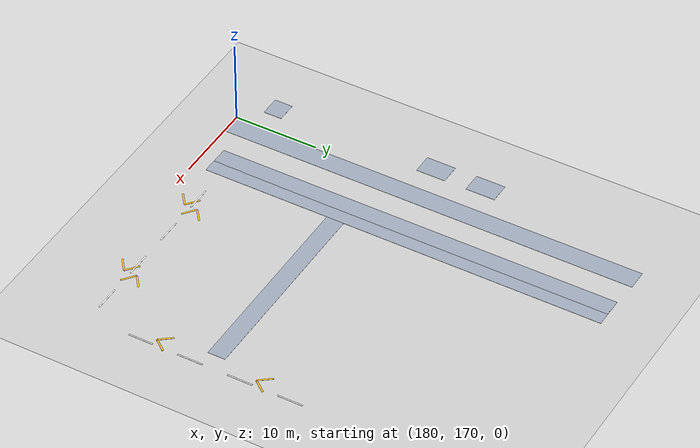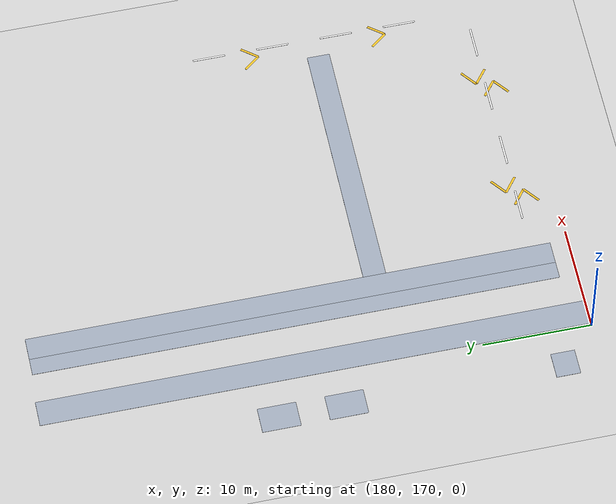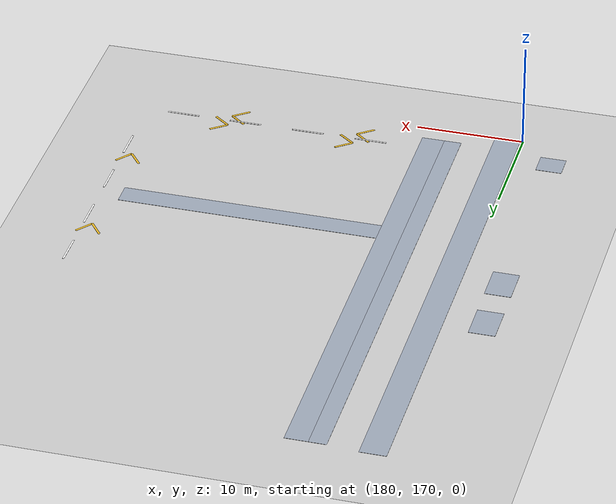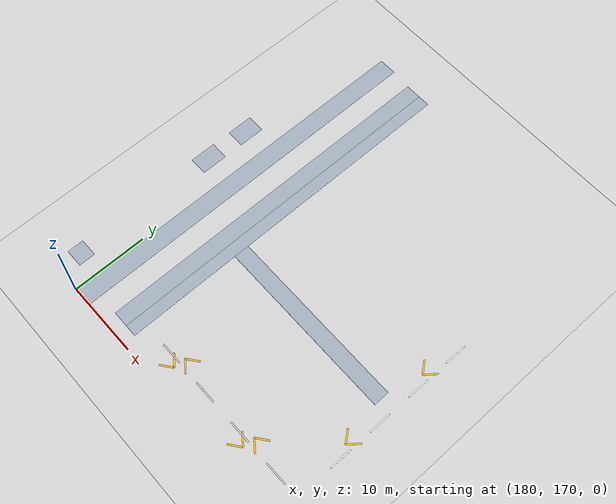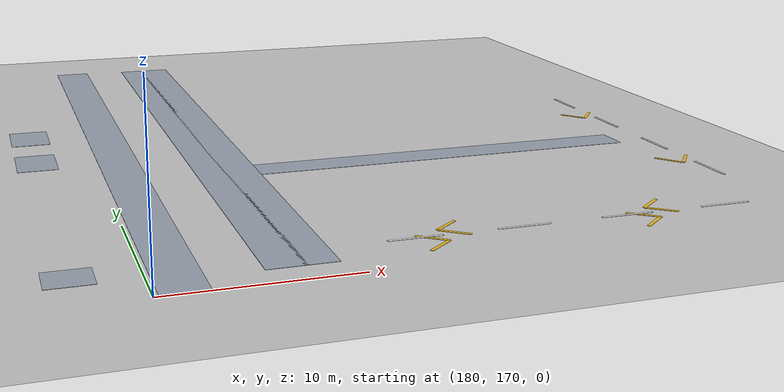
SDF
<sdf version="1.6">
 <world name="cad_plant">
  <include><uri>model://sun</uri></include>
  <include><uri>model://ground_plane</uri></include>
  <model name="lane_17">
   <static>true</static>
   <pose>201.200 187.910 0.020 0 0 0.0000</pose>
   <link name="link">
    <visual name="v">
     <geometry><box><size>24.100 2.100 0.020</size></box></geometry>
     <material><ambient>0.62 0.66 0.72 1</ambient><diffuse>0.62 0.66 0.72 1</diffuse></material>
    </visual>
   </link>
  </model>
  <model name="lane_27">
   <static>true</static>
   <pose>181.430 195.045 0.020 0 0 0.0000</pose>
   <link name="link">
    <visual name="v">
     <geometry><box><size>2.400 50.190 0.020</size></box></geometry>
     <material><ambient>0.62 0.66 0.72 1</ambient><diffuse>0.62 0.66 0.72 1</diffuse></material>
    </visual>
   </link>
  </model>
  <model name="lane_29">
   <static>true</static>
   <pose>186.500 195.765 0.020 0 0 0.0000</pose>
   <link name="link">
    <visual name="v">
     <geometry><box><size>2.100 48.210 0.020</size></box></geometry>
     <material><ambient>0.62 0.66 0.72 1</ambient><diffuse>0.62 0.66 0.72 1</diffuse></material>
    </visual>
   </link>
  </model>
  <model name="lane_31">
   <static>true</static>
   <pose>188.100 195.765 0.020 0 0 0.0000</pose>
   <link name="link">
    <visual name="v">
     <geometry><box><size>2.100 48.210 0.020</size></box></geometry>
     <material><ambient>0.62 0.66 0.72 1</ambient><diffuse>0.62 0.66 0.72 1</diffuse></material>
    </visual>
   </link>
  </model>
  <model name="road2_div01">
   <static>true</static>
   <pose>215.100 179.850 0.080 0 0 0.0000</pose>
   <link name="link">
    <visual name="v">
     <geometry><box><size>0.160 3.000 0.020</size></box></geometry>
     <material><ambient>0.97 0.97 0.97 1</ambient><diffuse>0.97 0.97 0.97 1</diffuse></material>
    </visual>
   </link>
  </model>
  <model name="road2_div02">
   <static>true</static>
   <pose>215.100 185.850 0.080 0 0 0.0000</pose>
   <link name="link">
    <visual name="v">
     <geometry><box><size>0.160 3.000 0.020</size></box></geometry>
     <material><ambient>0.97 0.97 0.97 1</ambient><diffuse>0.97 0.97 0.97 1</diffuse></material>
    </visual>
   </link>
  </model>
  <model name="road2_div03">
   <static>true</static>
   <pose>215.100 191.850 0.080 0 0 0.0000</pose>
   <link name="link">
    <visual name="v">
     <geometry><box><size>0.160 3.000 0.020</size></box></geometry>
     <material><ambient>0.97 0.97 0.97 1</ambient><diffuse>0.97 0.97 0.97 1</diffuse></material>
    </visual>
   </link>
  </model>
  <model name="road2_div04">
   <static>true</static>
   <pose>215.100 197.850 0.080 0 0 0.0000</pose>
   <link name="link">
    <visual name="v">
     <geometry><box><size>0.160 3.000 0.020</size></box></geometry>
     <material><ambient>0.97 0.97 0.97 1</ambient><diffuse>0.97 0.97 0.97 1</diffuse></material>
    </visual>
   </link>
  </model>
  <model name="road2a_arw01l">
   <static>true</static>
   <pose>213.746 182.059 0.070 0 0 8.5172</pose>
   <link name="link">
    <visual name="v">
     <geometry><box><size>1.800 0.200 0.020</size></box></geometry>
     <material><ambient>0.95 0.75 0.15 1</ambient><diffuse>0.95 0.75 0.15 1</diffuse></material>
    </visual>
   </link>
  </model>
  <model name="road2a_arw01r">
   <static>true</static>
   <pose>214.854 182.059 0.070 0 0 7.1908</pose>
   <link name="link">
    <visual name="v">
     <geometry><box><size>1.800 0.200 0.020</size></box></geometry>
     <material><ambient>0.95 0.75 0.15 1</ambient><diffuse>0.95 0.75 0.15 1</diffuse></material>
    </visual>
   </link>
  </model>
  <model name="road2a_arw02l">
   <static>true</static>
   <pose>213.746 194.059 0.070 0 0 8.5172</pose>
   <link name="link">
    <visual name="v">
     <geometry><box><size>1.800 0.200 0.020</size></box></geometry>
     <material><ambient>0.95 0.75 0.15 1</ambient><diffuse>0.95 0.75 0.15 1</diffuse></material>
    </visual>
   </link>
  </model>
  <model name="road2a_arw02r">
   <static>true</static>
   <pose>214.854 194.059 0.070 0 0 7.1908</pose>
   <link name="link">
    <visual name="v">
     <geometry><box><size>1.800 0.200 0.020</size></box></geometry>
     <material><ambient>0.95 0.75 0.15 1</ambient><diffuse>0.95 0.75 0.15 1</diffuse></material>
    </visual>
   </link>
  </model>
  <model name="road3_div01">
   <static>true</static>
   <pose>193.650 173.500 0.080 0 0 0.0000</pose>
   <link name="link">
    <visual name="v">
     <geometry><box><size>3.000 0.160 0.020</size></box></geometry>
     <material><ambient>0.97 0.97 0.97 1</ambient><diffuse>0.97 0.97 0.97 1</diffuse></material>
    </visual>
   </link>
  </model>
  <model name="road3_div02">
   <static>true</static>
   <pose>199.650 173.500 0.080 0 0 0.0000</pose>
   <link name="link">
    <visual name="v">
     <geometry><box><size>3.000 0.160 0.020</size></box></geometry>
     <material><ambient>0.97 0.97 0.97 1</ambient><diffuse>0.97 0.97 0.97 1</diffuse></material>
    </visual>
   </link>
  </model>
  <model name="road3_div03">
   <static>true</static>
   <pose>205.650 173.500 0.080 0 0 0.0000</pose>
   <link name="link">
    <visual name="v">
     <geometry><box><size>3.000 0.160 0.020</size></box></geometry>
     <material><ambient>0.97 0.97 0.97 1</ambient><diffuse>0.97 0.97 0.97 1</diffuse></material>
    </visual>
   </link>
  </model>
  <model name="road3_div04">
   <static>true</static>
   <pose>211.650 173.500 0.080 0 0 0.0000</pose>
   <link name="link">
    <visual name="v">
     <geometry><box><size>3.000 0.160 0.020</size></box></geometry>
     <material><ambient>0.97 0.97 0.97 1</ambient><diffuse>0.97 0.97 0.97 1</diffuse></material>
    </visual>
   </link>
  </model>
  <model name="road3a_arw01l">
   <static>true</static>
   <pose>194.441 172.146 0.070 0 0 3.8048</pose>
   <link name="link">
    <visual name="v">
     <geometry><box><size>1.800 0.200 0.020</size></box></geometry>
     <material><ambient>0.95 0.75 0.15 1</ambient><diffuse>0.95 0.75 0.15 1</diffuse></material>
    </visual>
   </link>
  </model>
  <model name="road3a_arw01r">
   <static>true</static>
   <pose>194.441 173.254 0.070 0 0 2.4784</pose>
   <link name="link">
    <visual name="v">
     <geometry><box><size>1.800 0.200 0.020</size></box></geometry>
     <material><ambient>0.95 0.75 0.15 1</ambient><diffuse>0.95 0.75 0.15 1</diffuse></material>
    </visual>
   </link>
  </model>
  <model name="road3a_arw02l">
   <static>true</static>
   <pose>206.441 172.146 0.070 0 0 3.8048</pose>
   <link name="link">
    <visual name="v">
     <geometry><box><size>1.800 0.200 0.020</size></box></geometry>
     <material><ambient>0.95 0.75 0.15 1</ambient><diffuse>0.95 0.75 0.15 1</diffuse></material>
    </visual>
   </link>
  </model>
  <model name="road3a_arw02r">
   <static>true</static>
   <pose>206.441 173.254 0.070 0 0 2.4784</pose>
   <link name="link">
    <visual name="v">
     <geometry><box><size>1.800 0.200 0.020</size></box></geometry>
     <material><ambient>0.95 0.75 0.15 1</ambient><diffuse>0.95 0.75 0.15 1</diffuse></material>
    </visual>
   </link>
  </model>
  <model name="road3b_arw01l">
   <static>true</static>
   <pose>195.859 174.854 0.070 0 0 6.9464</pose>
   <link name="link">
    <visual name="v">
     <geometry><box><size>1.800 0.200 0.020</size></box></geometry>
     <material><ambient>0.95 0.75 0.15 1</ambient><diffuse>0.95 0.75 0.15 1</diffuse></material>
    </visual>
   </link>
  </model>
  <model name="road3b_arw01r">
   <static>true</static>
   <pose>195.859 173.746 0.070 0 0 5.6200</pose>
   <link name="link">
    <visual name="v">
     <geometry><box><size>1.800 0.200 0.020</size></box></geometry>
     <material><ambient>0.95 0.75 0.15 1</ambient><diffuse>0.95 0.75 0.15 1</diffuse></material>
    </visual>
   </link>
  </model>
  <model name="road3b_arw02l">
   <static>true</static>
   <pose>207.859 174.854 0.070 0 0 6.9464</pose>
   <link name="link">
    <visual name="v">
     <geometry><box><size>1.800 0.200 0.020</size></box></geometry>
     <material><ambient>0.95 0.75 0.15 1</ambient><diffuse>0.95 0.75 0.15 1</diffuse></material>
    </visual>
   </link>
  </model>
  <model name="road3b_arw02r">
   <static>true</static>
   <pose>207.859 173.746 0.070 0 0 5.6200</pose>
   <link name="link">
    <visual name="v">
     <geometry><box><size>1.800 0.200 0.020</size></box></geometry>
     <material><ambient>0.95 0.75 0.15 1</ambient><diffuse>0.95 0.75 0.15 1</diffuse></material>
    </visual>
   </link>
  </model>
  <model name="spur_GRV1_ld">
   <static>true</static>
   <pose>176.630 173.250 0.060 0 0 0.0000</pose>
   <link name="link">
    <visual name="v">
     <geometry><box><size>2.400 2.200 0.020</size></box></geometry>
     <material><ambient>0.62 0.66 0.72 1</ambient><diffuse>0.62 0.66 0.72 1</diffuse></material>
    </visual>
   </link>
  </model>
  <model name="spur_GRV1_uld">
   <static>true</static>
   <pose>176.630 193.202 0.060 0 0 0.0000</pose>
   <link name="link">
    <visual name="v">
     <geometry><box><size>2.400 3.505 0.020</size></box></geometry>
     <material><ambient>0.62 0.66 0.72 1</ambient><diffuse>0.62 0.66 0.72 1</diffuse></material>
    </visual>
   </link>
  </model>
  <model name="spur_GRV2_ld">
   <static>true</static>
   <pose>176.630 199.308 0.060 0 0 0.0000</pose>
   <link name="link">
    <visual name="v">
     <geometry><box><size>2.400 3.505 0.020</size></box></geometry>
     <material><ambient>0.62 0.66 0.72 1</ambient><diffuse>0.62 0.66 0.72 1</diffuse></material>
    </visual>
   </link>
  </model>
 </world>
</sdf>
